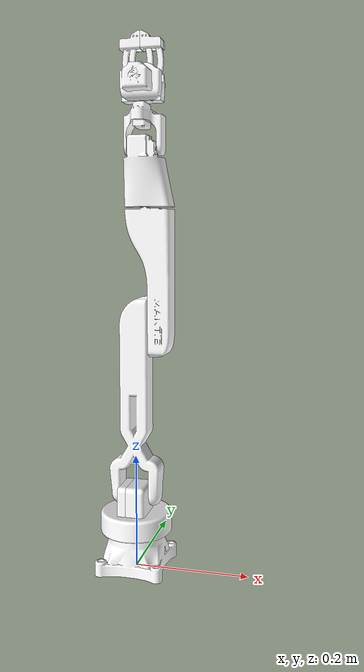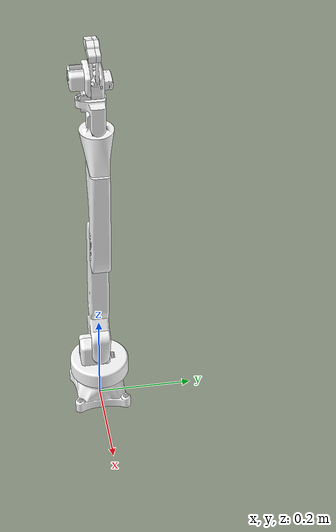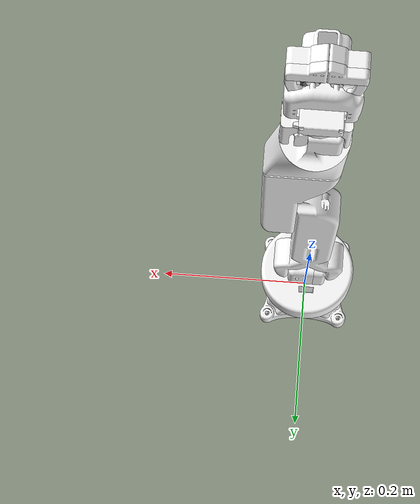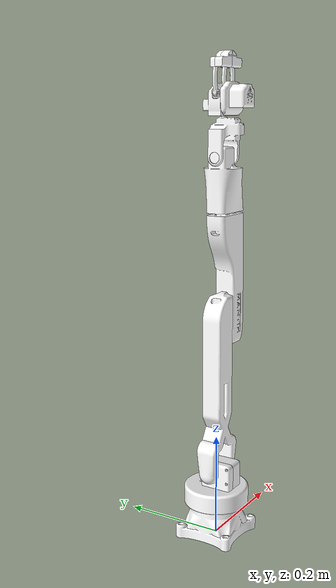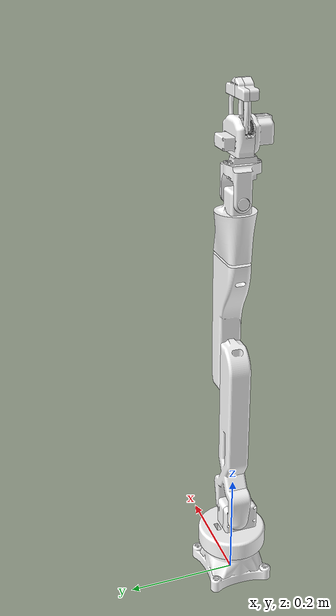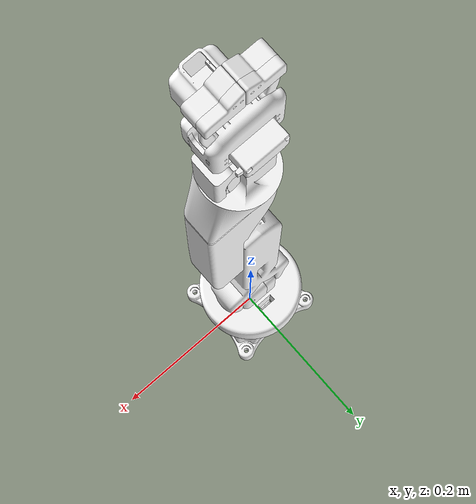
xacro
<?xml version="1.0"?>
<robot xmlns:xacro="http://www.ros.org/wiki/xacro" name="mantis">
    <xacro:arg name="initial_positions_file" default="initial_positions.yaml" />

    <!-- Import mantis urdf file -->
    <xacro:include filename="$(find mantis_description)/URDF/robot.urdf.xacro" />

    <!-- Import control_xacro -->
    <xacro:include filename="mantis.ros2_control.xacro" />

    <xacro:mantis_ros2_control name="FakeSystem" initial_positions_file="$(arg initial_positions_file)"/>

</robot>

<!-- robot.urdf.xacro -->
<robot name="mantis" xmlns:xacro="http://www.ros.org/wiki/xacro">

  <xacro:include filename="materials.urdf.xacro"/>
  <xacro:include filename="inertia_macro.xacro"/>
  <xacro:include filename="gazebo.urdf.xacro"/>

  <!-- //////////////////////////// BASE LINKS //////////////////////////// -->
  <link name="world" />
  <link name="base_link">
    <visual>
      <origin xyz="0 0 0" rpy="0 0 0"/>
      <geometry>
        <mesh filename="package://mantis_description/meshes/mantis_main_base.stl" scale="0.001 0.001 0.001"/>
      </geometry>
      <material name="white" />
    </visual>
    <collision>
      <origin xyz="0 0 0.035" rpy="0 0 0"/>
      <geometry>
        <box size="0.1 0.1 0.07"/>
      </geometry>
    </collision>
    <xacro:inertia m="0.388" xyz="0 0 0.03" rpy="0 0 0" ixx="${5.96e5}" ixy="-18.574" ixz="-19.74" iyy="${5.756e5}" iyz="1696.552" izz="${8.891e5}"/>
  </link>

  <link name="up_base_link">
    <visual>
      <origin xyz="0 0 0" rpy="0 0 0"/>
      <geometry>
        <mesh filename="package://mantis_description/meshes/up_base_mantis.stl" scale="0.001 0.001 0.001"/>
      </geometry>
      <material name="white" />
    </visual>
    <collision>
      <origin xyz="0 0 0.022" rpy="0 0 0"/>
      <geometry>
        <cylinder length="0.035" radius="0.0625"/>
      </geometry>
    </collision>
    <xacro:inertia m="0.495" xyz="0 0 0.028" rpy="0 0 0" ixx="${6.141e5}" ixy="5150.649" ixz="-24607.459" iyy="${6.011e5}" iyz="30749.791" izz="${8.193e5}"/>
  </link>

  <link name="up_base_servo_cover_link">
    <visual>
      <origin xyz="0 0 0" rpy="0 ${pi/2.0} ${pi}"/>
      <geometry>
        <mesh filename="package://mantis_description/meshes/servo_shield.stl" scale="0.001 0.001 0.001"/>
      </geometry>
      <material name="white" />
    </visual>
    <collision>
      <origin xyz="0.01 0 0" rpy="0 ${pi/2.0} ${pi}"/>
      <geometry>
        <box size="0.05 0.05 0.05"/>
      </geometry>
    </collision>
    <xacro:inertia m="0.05" xyz="0 0 0" rpy="0 0 0" ixx="${1e4}" ixy="0" ixz="0" iyy="${1e4}" iyz="0" izz="${1e4}"/>
  </link>

  <link name="arm1_link">
    <visual>
      <origin xyz="0.0265 0 0" rpy="0 ${pi/2.0} 0"/>
      <geometry>
        <mesh filename="package://mantis_description/meshes/arm_1.stl" scale="0.001 0.001 0.001"/>
      </geometry>
      <material name="white" />
    </visual>
    <collision>
      <origin xyz="0 0 0.2" rpy="0 0 0"/>
      <geometry>
        <box size="0.05 0.05 0.28"/>
      </geometry>
    </collision>
    <xacro:inertia m="0.627" xyz="0 0 0.15" rpy="0 ${pi/2.0} 0" ixx="${3.238e5}" ixy="-44.115" ixz="41507.895" iyy="${6.579e6}" iyz="9.216" izz="${6.419e6}"/>
  </link>

  <link name="arm2_link">
    <visual>
      <origin xyz="0 0 0" rpy="0 ${pi/2.0} 0"/>
      <geometry>
        <mesh filename="package://mantis_description/meshes/arm_2.stl" scale="0.001 0.001 0.001"/>
      </geometry>
      <material name="white" />
    </visual>
    <collision>
      <origin xyz="0.025 0 0.0725" rpy="0 0 0"/>
      <geometry>
        <box size="0.05 0.05 0.25"/>
      </geometry>
    </collision>
    <xacro:inertia m="0.510" xyz="0 0 0.0725" rpy="0 ${pi/2.0} 0" ixx="${2.312e5}" ixy="195.38" ixz="${-2.509e5}" iyy="${2.831e6}" iyz="-370.924" izz="${2.733e6}"/>
  </link>

  <link name="wrist_link">
    <visual>
      <origin xyz="0 0 0" rpy="0 ${pi/2.0} ${pi}"/>
      <geometry>
        <mesh filename="package://mantis_description/meshes/wrist_robot.stl" scale="0.001 0.001 0.001"/>
      </geometry>
      <material name="white" />
    </visual>
    <collision>
      <origin xyz="0 0 0.055" rpy="0 0 ${pi}"/>
      <geometry>
        <box size="0.05 0.05 0.11"/>
      </geometry>
    </collision>
    <xacro:inertia m="0.619" xyz="0 0 0.05" rpy="0 ${pi/2.0} ${pi}" ixx="${3.834e5}" ixy="-523.087" ixz="-72999.132" iyy="${7.292e5}" iyz="-1006.802" izz="${6.056e5}"/>
  </link>

  <!-- //////////////////////////////////////////// JOINTS ///////////////////////////////////////////////  -->
  <joint name="base_to_world" type="fixed">
    <parent link="world"/>
    <child link="base_link"/>
    <origin xyz="0 0 0" rpy="0 0 0"/>
  </joint>
  <joint name="joint_1_up_base_to_base" type="revolute">
    <parent link="base_link"/>
    <child link="up_base_link"/>
    <origin xyz="0 0 0.067" rpy="0 0 0"/>
    <axis xyz="0 0 1"/>
    <limit lower="${-pi}" upper="${pi}" effort="10" velocity="1"/>
    <dynamics damping="0.1" friction="0.05"/>
  </joint>
  <joint name="base_servo_cover_to_up_base" type="fixed">
    <parent link="up_base_link"/>
    <child link="up_base_servo_cover_link"/>
    <origin xyz="-0.0075 -0.01 0.067" rpy="${-pi/2.0} 0 0"/>
  </joint>
  <joint name="joint_2_arm1_to_up_base" type="revolute">
    <parent link="up_base_link"/>
    <child link="arm1_link"/>
    <origin xyz="0 0 0.067" rpy="0 0 0"/>
    <axis xyz="1 0 0"/>
    <limit lower="${-pi/2.0}" upper="${pi/2.0}" effort="10" velocity="1"/>
    <dynamics damping="0.1" friction="0.05"/>
  </joint>
  <joint name="joint_3_arm2_to_arm1" type="revolute">
    <parent link="arm1_link"/>
    <child link="arm2_link"/>
    <origin xyz="0.0265 0 0.3" rpy="0 0 0"/>
    <axis xyz="1 0 0"/>
    <limit lower="${-pi/2.0 -pi/3.0}" upper="${pi/2.0 + pi/3.0}" effort="10" velocity="1"/>
    <dynamics damping="0.1" friction="0.05"/>
  </joint>
  <joint name="joint_4_wrist_to_arm2" type="revolute">
    <parent link="arm2_link"/>
    <child link="wrist_link"/>
    <origin xyz="-0.0085 0 0.201" rpy="0 0 ${pi}"/>
    <axis xyz="0 0 1"/>
    <limit lower="${-pi}" upper="${pi}" effort="10" velocity="1"/>
    <dynamics damping="0.1" friction="0.05"/>
  </joint>
  <joint name="joint_5_gripper_wrist_to_wrist_link" type="revolute">
    <parent link="wrist_link"/>
    <child link="gripper_wrist_link"/>
    <origin xyz="-0.02540  0 0.09910" rpy="0 ${pi/2.0} ${pi}"/>
    <axis xyz="0 0 1"/>
    <limit lower="${-pi/2.0}" upper="${pi/2.0}" effort="10" velocity="1"/>
    <dynamics damping="0.1" friction="0.05"/>
  </joint>
  <joint name="joint_6_gripper_hand_to_gripper_wrist" type="revolute">
    <parent link="gripper_wrist_link"/>
    <child link="gripper_hand_link"/>
    <origin xyz="-0.073 0 -0.02625" rpy="0 0 0"/>
    <axis xyz="1 0 0"/>
    <limit lower="${-pi/2.0}" upper="${pi/2.0}" effort="10" velocity="1"/>
    <dynamics damping="0.1" friction="0.05"/>
  </joint>

  <!-- /////////////////////////////////////////// GRIPPER ///////////////////////////////////////////////  -->
  <xacro:include filename="gripper.urdf.xacro"/>

  <!-- /////////////////////////////////////////// GAZEBO ///////////////////////////////////////////////  -->
  <!-- plugin mounted with Detachable joint, check SDF world file in bringup! Method proprosed by doc -->

  <gazebo reference="gripper_hand_link">
    <preserveFixedJoint>true</preserveFixedJoint>
  </gazebo>

</robot>

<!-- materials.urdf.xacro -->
<robot xmlns:xacro="http://www.ros.org/wiki/xacro">

    <material name="grey">
        <color rgba="0.5 0.5 0.5 1" />
    </material>
    <material name="black">
        <color rgba="0.1 0.1 0.1 1" />
    </material>
    <material name="white">
        <color rgba="1 1 1 1" />
    </material>

</robot>

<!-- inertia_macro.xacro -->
<robot xmlns:xacro="http://www.ros.org/wiki/xacro">
<!-- param in g mm^2 -->
<xacro:macro name="inertia" params="m xyz rpy ixx ixy ixz iyy iyz izz">
        <inertial>
            <origin xyz="${xyz}" rpy="${rpy}" />
            <mass value="${m}" />
            <inertia ixx="${ixx/1000000000}" ixy="${ixy/1000000000}" ixz="${ixz/1000000000}"
                    iyy="${iyy/1000000000}" iyz="${iyz/1000000000}" izz="${izz/1000000000}" />
        </inertial>
</xacro:macro>

</robot>

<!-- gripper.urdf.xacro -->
<robot xmlns:xacro="http://www.ros.org/wiki/xacro">

  <!-- \\\\\\\\\\\\\\\\\\\\\\\\\\\\\\\\\\\\\\\\\\\\\\\\\\\\\\\\\\\\\LINKS\\\\\\\\\\\\\\\\\\\\\\\\\\\\\\\\\\\\\\\\\\\\\\\\\\\\\\\\\\ -->
  <!-- gripper wrist link and main gripper link-->
  <link name="gripper_wrist_link">
    <visual>
      <origin xyz="0 0 0" rpy="0 0 0"/>
      <geometry>
        <mesh filename="package://mantis_description/meshes/gripper_wrist.stl" scale="0.001 0.001 0.001"/>
      </geometry>
      <material name="white" />
    </visual>
    <collision>
      <origin xyz="-0.05 -0.01 -0.025" rpy="0 0 0"/>
      <geometry>
        <box size="0.02 0.04 0.05"/>
      </geometry>
    </collision>
    <xacro:inertia m="0.070" xyz="-0.025 0 -0.02625" rpy="0 ${pi/2.0} ${pi}" ixx="37541.704" ixy="-1682.125" ixz="-4987.467" iyy="45042.135" iyz="-666.741" izz="25355.784"/>
  </link>

  <link name="gripper_hand_link">
    <visual>
      <origin xyz="-0.007 0.0085 0.024388" rpy="0 0 0"/>
      <geometry>
        <mesh filename="package://mantis_description/meshes/chwytak_hand.stl" scale="0.001 0.001 0.001"/>
      </geometry>
      <material name="white" />
    </visual>
    <collision>
      <origin xyz="-0.025 0.01 0" rpy="0 0 0"/>
      <geometry>
        <box size="0.05 0.01 0.05"/>
      </geometry>
    </collision>
    <xacro:inertia m="0.070" xyz="-0.025 0.01  0" rpy="${pi} 0 ${pi/2.0}" ixx="${8923.156}" ixy="-0.083" ixz="-0.014" iyy="5569.97" iyz="14.451" izz="5454.186"/>
  </link>

  <!-- gripper sprocket links -->
  <xacro:macro name="sprocket_link" params="prefix">
    <link name="${prefix}">
      <visual>
        <origin xyz="0 0 0" rpy="${pi/2.0} 0 0"/>
        <geometry>
          <mesh filename="package://mantis_description/meshes/gripper_sprocket.stl" scale="0.001 0.001 0.001"/>
        </geometry>
        <material name="grey" />
      </visual>
      <collision>
          <origin xyz="0 0.0015 0" rpy="${pi/2.0} 0 0"/>
          <geometry>
            <cylinder length="0.001" radius="0.005"/>
          </geometry>
      </collision>
      <xacro:inertia m="0.015" xyz="0 0 0" rpy="0 0 0" ixx="${2e2}" ixy="0" ixz="0" iyy="${2e2}" iyz="0" izz="${2e2}"/>
    </link>
  </xacro:macro>

  <xacro:sprocket_link prefix="gripper_sprocket_servo_link" />
  <xacro:sprocket_link prefix="gripper_sprocket_finger_right_link" />
  <xacro:sprocket_link prefix="gripper_sprocket_finger_left_link" />

  <!-- gripper fingers links -->
  <xacro:macro name="finger_link" params="prefix rpy" >
    <link name="${prefix}">
      <visual>
        <origin xyz="0 0 0" rpy="${rpy}"/>
        <geometry>
          <mesh filename="package://mantis_description/meshes/grip_finger.stl" scale="0.001 0.001 0.001"/>
        </geometry>
        <material name="white" />
      </visual>
      <collision>
          <origin xyz="0 0 0.025" rpy="0 0 ${pi/2.0}"/>
          <geometry>
            <box size="0.001 0.007 0.05"/>
          </geometry>
      </collision>
      <xacro:inertia m="0.003376" xyz="0 0 0.025" rpy="${pi/2.0} ${pi/2.0} 0" ixx="53.833" ixy="-0.003" ixz="0" iyy="1151.319" iyz="0" izz="1186.789"/>
    </link>
  </xacro:macro>

  <xacro:finger_link prefix="gripper_finger1_link" rpy="0 ${pi/2.0} ${pi/2.0}"/>
  <xacro:finger_link prefix="gripper_finger2_link" rpy="0 ${pi/2.0} ${pi/2.0}"/>
  <xacro:finger_link prefix="gripper_finger3_link" rpy="${pi} ${pi/2.0} ${pi/2.0}"/>
  <xacro:finger_link prefix="gripper_finger4_link" rpy="${pi} ${pi/2.0} ${pi/2.0}"/>

  <!-- teeth links -->
  <link name="gripper_left_down_tooth_link">
    <visual>
      <origin xyz="0 0 0" rpy="0 ${pi/2.0} ${pi/2.0}"/>
      <geometry>
        <mesh filename="package://mantis_description/meshes/grip_tooth_left.stl" scale="0.001 0.001 0.001"/>
      </geometry>
      <material name="white" />
    </visual>
    <collision>
      <origin xyz="0.01 0.012 0.01" rpy="0 ${pi/2.0} ${pi/2.0}"/>
      <geometry>
        <box size="0.001 0.025 0.025"/>
      </geometry>
    </collision>
    <xacro:inertia m="0.007548" xyz="0.004 0.007 -0.005" rpy="${pi/2.0} ${pi - pi/4.0} 0" ixx="530.538" ixy="-210.968" ixz="21.489" iyy="1087.856" iyz="33.966" izz="1289.774"/>
  </link>
  <link name="gripper_left_up_tooth_link">
    <visual>
      <origin xyz="0 0 0" rpy="0 ${pi/2.0} ${pi/2.0}"/>
      <geometry>
        <mesh filename="package://mantis_description/meshes/tooth_cover_left.stl" scale="0.001 0.001 0.001"/>
      </geometry>
      <material name="white" />
    </visual>
    <collision>
      <origin xyz="0.01 -0.0035 -0.01" rpy="0 0 ${pi/2.0}"/>
      <geometry>
        <box size="0.005 0.02 0.025"/>
      </geometry>
    </collision>
    <xacro:inertia m="0.004363" xyz="0.004 0.007 -0.005" rpy="${pi/2.0} ${0.75*pi} 0" ixx="253.323" ixy="-125.553" ixz="-17.442" iyy="586.836" iyz="-27.24" izz="766.36"/>
  </link>

  <link name="gripper_right_down_tooth_link">
    <visual>
      <origin xyz="0 0 0" rpy="0 ${pi/2.0} ${pi/2.0}"/>
      <geometry>
        <mesh filename="package://mantis_description/meshes/grip_tooth_right.stl" scale="0.001 0.001 0.001"/>
      </geometry>
      <material name="white" />
    </visual>
    <collision>
      <origin xyz="0.01 0.012 -0.01" rpy="0 ${pi/2.0} ${pi/2.0}"/>
      <geometry>
        <box size="0.001 0.025 0.025"/>
      </geometry>
    </collision>
    <xacro:inertia m="0.007548" xyz="0.004 0.007 0.005" rpy="${pi/2.0} ${pi/2.0} 0" ixx="530.538" ixy="-210.968" ixz="21.489" iyy="1087.856" iyz="33.966" izz="1289.774"/>
  </link>
  <link name="gripper_right_up_tooth_link">
    <visual>
      <origin xyz="0 0 0" rpy="0 ${pi/2.0} ${pi/2.0}"/>
      <geometry>
        <mesh filename="package://mantis_description/meshes/tooth_cover_right.stl" scale="0.001 0.001 0.001"/>
      </geometry>
      <material name="white" />
    </visual>
    <collision>
      <origin xyz="0.01 -0.0035 0.01" rpy="0 0 ${pi/2.0}"/>
      <geometry>
        <box size="0.005 0.02 0.025"/>
      </geometry>
    </collision>
    <xacro:inertia m="0.004363" xyz="0.004 0.007 0.005" rpy="${pi/2.0} ${pi/2.0} 0" ixx="253.323" ixy="-125.553" ixz="-17.442" iyy="586.836" iyz="-27.24" izz="766.36"/>
  </link>

  <!-- Up cover link -->
  <link name="gripper_up_cover_link">
    <visual>
      <origin xyz="0.04 0.0084 0.025" rpy="0 0 0"/>
      <geometry>
        <mesh filename="package://mantis_description/meshes/gripper_cover.stl" scale="0.001 0.001 0.001"/>
      </geometry>
      <material name="white" />
    </visual>
    <collision>
      <origin xyz="-0.038 -0.032 0" rpy="0 0 0"/>
      <geometry>
        <box size="0.05 0.03 0.05"/>
      </geometry>
    </collision>
    <xacro:inertia m="0.040585" xyz="-0.038 -0.032 0" rpy="0 0 0" ixx="20425.17"  ixy="-2151.655" ixz="-179.271" iyy="24033.968" iyz="-118.194" izz="17209.24"/>
  </link>

  <!-- ///////////////////////////////////// JOINTS ///////////////////////////////////////////////  -->
  <!-- Gripper sprocket joints with mimic-->
  <joint name="joint_7_gripper_sprocket_to_gripper_main" type="revolute">
    <parent link="gripper_hand_link"/>
    <child link="gripper_sprocket_servo_link"/>
    <origin xyz="-0.018831 -0.0156 0.00935" rpy="${pi} 0 0"/>
    <axis xyz="0 1 0"/>
    <limit lower="0" upper="${pi/4.0}" effort="10" velocity="1"/>
  </joint>
  <joint name="joint_mimic_gripper_sprocket_right_to_sprocket_servo" type="revolute">
    <parent link="gripper_hand_link"/>
    <child link="gripper_sprocket_finger_right_link"/>
    <origin xyz="-0.03925 -0.01440 0.009733" rpy="0 ${-pi/20.0} 0"/>
    <axis xyz="0 1 0"/>
    <limit lower="${-pi/2.0}" upper="${pi/2.0}" effort="10" velocity="1"/>
    <mimic joint="joint_7_gripper_sprocket_to_gripper_main" multiplier="1.0"/>
  </joint>
  <joint name="joint_mimic_gripper_sprocket_left_to_sprocket_servo" type="revolute">
    <parent link="gripper_hand_link"/>
    <child link="gripper_sprocket_finger_left_link"/>
    <origin xyz="-0.03925 -0.01440 -0.010962" rpy="0 0 0"/>
    <axis xyz="0 1 0"/>
    <limit lower="${-pi/2.0}" upper="${pi/2.0}" effort="10" velocity="1"/>
    <mimic joint="joint_7_gripper_sprocket_to_gripper_main" multiplier="-1.0"/>
  </joint>

  <!-- Gripper fingers joints mimic -->
  <joint name="joint_mimic_gripper_finger1_to_gripper_main" type="revolute">
    <parent link="gripper_hand_link"/>
    <child link="gripper_finger1_link"/>
    <origin xyz="-0.03925 -0.01 0.009738" rpy="0 ${-pi/2.0} 0"/>
    <axis xyz="0 1 0"/>
    <limit lower="${-pi/2.0}" upper="${pi/2.0}" effort="10" velocity="1"/>
    <mimic joint="joint_7_gripper_sprocket_to_gripper_main" multiplier="1.0"/>
  </joint>
  <joint name="joint_mimic_gripper_finger2_to_gripper_main" type="revolute">
    <parent link="gripper_hand_link"/>
    <child link="gripper_finger2_link"/>
    <origin xyz="-0.03925 0 0.024738" rpy="0 ${-pi/2.0} 0"/>
    <axis xyz="0 1 0"/>
    <limit lower="${-pi/2.0}" upper="${pi/2.0}" effort="10" velocity="1"/>
    <mimic joint="joint_7_gripper_sprocket_to_gripper_main" multiplier="1.0"/>
  </joint>
  <joint name="joint_mimic_gripper_finger3_to_gripper_main" type="revolute">
    <parent link="gripper_hand_link"/>
    <child link="gripper_finger3_link"/>
    <origin xyz="-0.03925 0 -0.025962" rpy="0 ${-pi/2.0} 0"/>
    <axis xyz="0 1 0"/>
    <limit lower="${-pi/2.0}" upper="${pi/2.0}" effort="10" velocity="1"/>
    <mimic joint="joint_7_gripper_sprocket_to_gripper_main" multiplier="-1.0"/>
  </joint>
  <joint name="joint_mimic_gripper_finger4_to_gripper_main" type="revolute">
    <parent link="gripper_hand_link"/>
    <child link="gripper_finger4_link"/>
    <origin xyz="-0.03925 -0.01 -0.010962" rpy="0 ${-pi/2.0} 0"/>
    <axis xyz="0 1 0"/>
    <limit lower="${-pi/2.0}" upper="${pi/2.0}" effort="10" velocity="1"/>
    <mimic joint="joint_7_gripper_sprocket_to_gripper_main" multiplier="-1.0"/>
  </joint>

  <!-- Gripper teeth joints -->
  <joint name="joint_mimic_gripper_left_down_teeth_to_gripper_main" type="revolute">
    <parent link="gripper_finger1_link"/>
    <child link="gripper_left_down_tooth_link"/>
    <origin xyz="0 -0.0075 0.05" rpy="0 ${-pi/2.0} 0"/>
    <axis xyz="0 1 0"/>
    <limit lower="${-pi/2.0}" upper="${pi/2.0}" effort="10" velocity="1"/>
    <mimic joint="joint_7_gripper_sprocket_to_gripper_main" multiplier="-1.0"/>
  </joint>
  <joint name="joint_fixed_gripper_left_up_teeth_to_gripper_main" type="fixed">
    <parent link="gripper_left_down_tooth_link"/>
    <child link="gripper_left_up_tooth_link"/>
    <origin xyz="0 0.015 0" rpy="0 0 0"/>
  </joint>

  <joint name="joint_mimic_gripper_right_down_teeth_to_gripper_main" type="revolute">
    <parent link="gripper_finger4_link"/>
    <child link="gripper_right_down_tooth_link"/>
    <origin xyz="0 -0.0075 0.05" rpy="0 ${-pi/2.0} 0"/>
    <axis xyz="0 1 0"/>
    <limit lower="${-pi/2.0}" upper="${pi/2.0}" effort="10" velocity="1"/>
    <mimic joint="joint_7_gripper_sprocket_to_gripper_main" multiplier="1.0"/>
  </joint>
  <joint name="joint_fixed_gripper_right_up_teeth_to_gripper_main" type="fixed">
    <parent link="gripper_right_down_tooth_link"/>
    <child link="gripper_right_up_tooth_link"/>
    <origin xyz="0 0.015 0" rpy="0 0 0"/>
  </joint>

  <!-- cover joint -->
  <joint name="joint_fixed_gripper_up_cover_to_gripper_main" type="fixed">
    <parent link="gripper_hand_link"/>
    <child link="gripper_up_cover_link"/>
    <origin xyz="0 0 0" rpy="0 0 0"/>
  </joint>

</robot>
